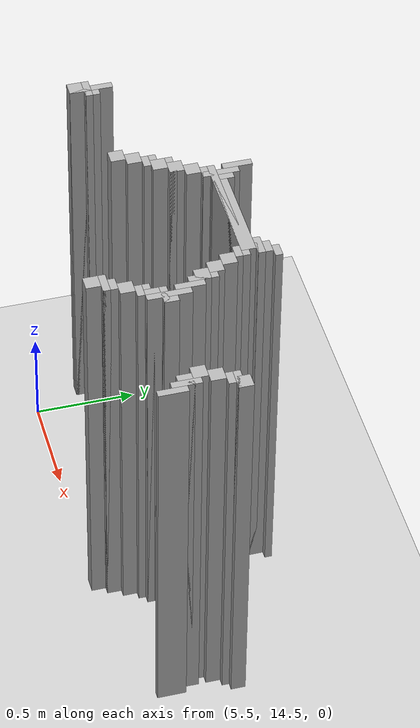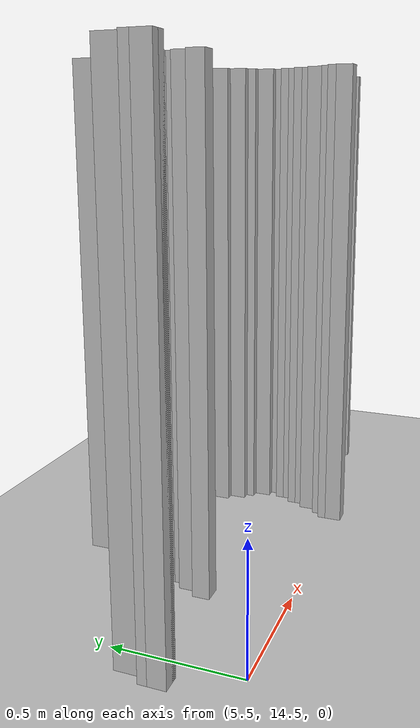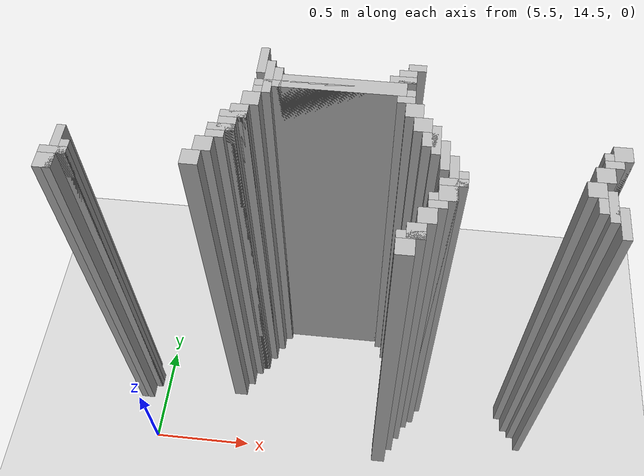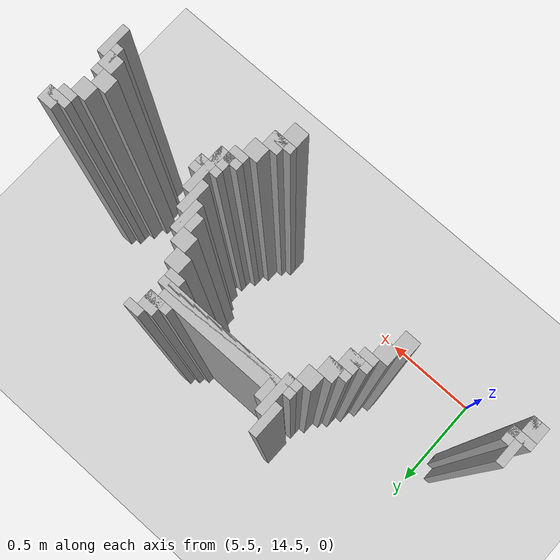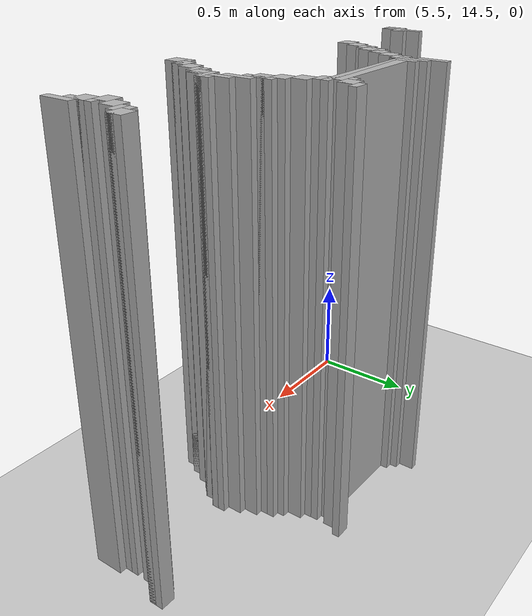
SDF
<sdf version="1.6">
 <world name="slam_world">
  <model name="ground_plane">
   <static>true</static>
   <link name="link">
    <collision name="collision">
     <geometry><plane><normal>0 0 1</normal><size>100 100</size></plane></geometry>
    </collision>
    <visual name="visual">
     <geometry><plane><normal>0 0 1</normal><size>100 100</size></plane></geometry>
     <material>
      <ambient>0.8 0.8 0.8 1</ambient>
      <diffuse>0.8 0.8 0.8 1</diffuse>
      <specular>0.8 0.8 0.8 1</specular>
     </material>
    </visual>
   </link>
  </model>
  <model name="wall_676">
   <static>true</static>
   <pose>6.107888631090487 15.348027842227378 1.0 0 0 0</pose>
   <link name="link">
    <collision name="collision">
     <geometry><box><size>0.03480278422273782 0.13921113689095127 2.0</size></box></geometry>
    </collision>
    <visual name="visual">
     <geometry><box><size>0.03480278422273782 0.13921113689095127 2.0</size></box></geometry>
     <material><ambient>0.5 0.5 0.5 1</ambient><diffuse>0.7 0.7 0.7 1</diffuse></material>
    </visual>
   </link>
  </model>
  <model name="wall_688">
   <static>true</static>
   <pose>6.716937354988398 15.365429234338746 1.0 0 0 0</pose>
   <link name="link">
    <collision name="collision">
     <geometry><box><size>0.06960556844547564 0.03480278422273782 2.0</size></box></geometry>
    </collision>
    <visual name="visual">
     <geometry><box><size>0.06960556844547564 0.03480278422273782 2.0</size></box></geometry>
     <material><ambient>0.5 0.5 0.5 1</ambient><diffuse>0.7 0.7 0.7 1</diffuse></material>
    </visual>
   </link>
  </model>
  <model name="wall_698">
   <static>true</static>
   <pose>6.142691415313225 15.261020881670532 1.0 0 0 0</pose>
   <link name="link">
    <collision name="collision">
     <geometry><box><size>0.03480278422273782 0.17401392111368907 2.0</size></box></geometry>
    </collision>
    <visual name="visual">
     <geometry><box><size>0.03480278422273782 0.17401392111368907 2.0</size></box></geometry>
     <material><ambient>0.5 0.5 0.5 1</ambient><diffuse>0.7 0.7 0.7 1</diffuse></material>
    </visual>
   </link>
  </model>
  <model name="wall_699">
   <static>true</static>
   <pose>6.682134570765661 15.31322505800464 1.0 0 0 0</pose>
   <link name="link">
    <collision name="collision">
     <geometry><box><size>0.06960556844547564 0.06960556844547564 2.0</size></box></geometry>
    </collision>
    <visual name="visual">
     <geometry><box><size>0.06960556844547564 0.06960556844547564 2.0</size></box></geometry>
     <material><ambient>0.5 0.5 0.5 1</ambient><diffuse>0.7 0.7 0.7 1</diffuse></material>
    </visual>
   </link>
  </model>
  <model name="wall_714">
   <static>true</static>
   <pose>6.177494199535962 15.261020881670532 1.0 0 0 0</pose>
   <link name="link">
    <collision name="collision">
     <geometry><box><size>0.03480278422273782 0.10440835266821345 2.0</size></box></geometry>
    </collision>
    <visual name="visual">
     <geometry><box><size>0.03480278422273782 0.10440835266821345 2.0</size></box></geometry>
     <material><ambient>0.5 0.5 0.5 1</ambient><diffuse>0.7 0.7 0.7 1</diffuse></material>
    </visual>
   </link>
  </model>
  <model name="wall_715">
   <static>true</static>
   <pose>6.664733178654292 15.295823665893272 1.0 0 0 0</pose>
   <link name="link">
    <collision name="collision">
     <geometry><box><size>0.10440835266821345 0.03480278422273782 2.0</size></box></geometry>
    </collision>
    <visual name="visual">
     <geometry><box><size>0.10440835266821345 0.03480278422273782 2.0</size></box></geometry>
     <material><ambient>0.5 0.5 0.5 1</ambient><diffuse>0.7 0.7 0.7 1</diffuse></material>
    </visual>
   </link>
  </model>
  <model name="wall_727">
   <static>true</static>
   <pose>6.438515081206496 15.243619489559164 1.0 0 0 0</pose>
   <link name="link">
    <collision name="collision">
     <geometry><box><size>0.4872389791183295 0.06960556844547564 2.0</size></box></geometry>
    </collision>
    <visual name="visual">
     <geometry><box><size>0.4872389791183295 0.06960556844547564 2.0</size></box></geometry>
     <material><ambient>0.5 0.5 0.5 1</ambient><diffuse>0.7 0.7 0.7 1</diffuse></material>
    </visual>
   </link>
  </model>
  <model name="wall_737">
   <static>true</static>
   <pose>6.403712296983758 15.226218097447795 1.0 0 0 0</pose>
   <link name="link">
    <collision name="collision">
     <geometry><box><size>0.6264501160092807 0.03480278422273782 2.0</size></box></geometry>
    </collision>
    <visual name="visual">
     <geometry><box><size>0.6264501160092807 0.03480278422273782 2.0</size></box></geometry>
     <material><ambient>0.5 0.5 0.5 1</ambient><diffuse>0.7 0.7 0.7 1</diffuse></material>
    </visual>
   </link>
  </model>
  <model name="wall_749">
   <static>true</static>
   <pose>6.125290023201856 15.191415313225058 1.0 0 0 0</pose>
   <link name="link">
    <collision name="collision">
     <geometry><box><size>0.06960556844547564 0.03480278422273782 2.0</size></box></geometry>
    </collision>
    <visual name="visual">
     <geometry><box><size>0.06960556844547564 0.03480278422273782 2.0</size></box></geometry>
     <material><ambient>0.5 0.5 0.5 1</ambient><diffuse>0.7 0.7 0.7 1</diffuse></material>
    </visual>
   </link>
  </model>
  <model name="wall_750">
   <static>true</static>
   <pose>6.682134570765661 15.191415313225058 1.0 0 0 0</pose>
   <link name="link">
    <collision name="collision">
     <geometry><box><size>0.06960556844547564 0.03480278422273782 2.0</size></box></geometry>
    </collision>
    <visual name="visual">
     <geometry><box><size>0.06960556844547564 0.03480278422273782 2.0</size></box></geometry>
     <material><ambient>0.5 0.5 0.5 1</ambient><diffuse>0.7 0.7 0.7 1</diffuse></material>
    </visual>
   </link>
  </model>
  <model name="wall_763">
   <static>true</static>
   <pose>6.090487238979118 15.139211136890951 1.0 0 0 0</pose>
   <link name="link">
    <collision name="collision">
     <geometry><box><size>0.06960556844547564 0.06960556844547564 2.0</size></box></geometry>
    </collision>
    <visual name="visual">
     <geometry><box><size>0.06960556844547564 0.06960556844547564 2.0</size></box></geometry>
     <material><ambient>0.5 0.5 0.5 1</ambient><diffuse>0.7 0.7 0.7 1</diffuse></material>
    </visual>
   </link>
  </model>
  <model name="wall_764">
   <static>true</static>
   <pose>6.716937354988398 15.139211136890951 1.0 0 0 0</pose>
   <link name="link">
    <collision name="collision">
     <geometry><box><size>0.06960556844547564 0.06960556844547564 2.0</size></box></geometry>
    </collision>
    <visual name="visual">
     <geometry><box><size>0.06960556844547564 0.06960556844547564 2.0</size></box></geometry>
     <material><ambient>0.5 0.5 0.5 1</ambient><diffuse>0.7 0.7 0.7 1</diffuse></material>
    </visual>
   </link>
  </model>
  <model name="wall_777">
   <static>true</static>
   <pose>6.05568445475638 15.069605568445475 1.0 0 0 0</pose>
   <link name="link">
    <collision name="collision">
     <geometry><box><size>0.06960556844547564 0.06960556844547564 2.0</size></box></geometry>
    </collision>
    <visual name="visual">
     <geometry><box><size>0.06960556844547564 0.06960556844547564 2.0</size></box></geometry>
     <material><ambient>0.5 0.5 0.5 1</ambient><diffuse>0.7 0.7 0.7 1</diffuse></material>
    </visual>
   </link>
  </model>
  <model name="wall_778">
   <static>true</static>
   <pose>6.751740139211137 15.069605568445475 1.0 0 0 0</pose>
   <link name="link">
    <collision name="collision">
     <geometry><box><size>0.06960556844547564 0.06960556844547564 2.0</size></box></geometry>
    </collision>
    <visual name="visual">
     <geometry><box><size>0.06960556844547564 0.06960556844547564 2.0</size></box></geometry>
     <material><ambient>0.5 0.5 0.5 1</ambient><diffuse>0.7 0.7 0.7 1</diffuse></material>
    </visual>
   </link>
  </model>
  <model name="wall_791">
   <static>true</static>
   <pose>6.038283062645012 15.052204176334106 1.0 0 0 0</pose>
   <link name="link">
    <collision name="collision">
     <geometry><box><size>0.10440835266821345 0.03480278422273782 2.0</size></box></geometry>
    </collision>
    <visual name="visual">
     <geometry><box><size>0.10440835266821345 0.03480278422273782 2.0</size></box></geometry>
     <material><ambient>0.5 0.5 0.5 1</ambient><diffuse>0.7 0.7 0.7 1</diffuse></material>
    </visual>
   </link>
  </model>
  <model name="wall_792">
   <static>true</static>
   <pose>6.803944315545244 15.0 1.0 0 0 0</pose>
   <link name="link">
    <collision name="collision">
     <geometry><box><size>0.03480278422273782 0.13921113689095127 2.0</size></box></geometry>
    </collision>
    <visual name="visual">
     <geometry><box><size>0.03480278422273782 0.13921113689095127 2.0</size></box></geometry>
     <material><ambient>0.5 0.5 0.5 1</ambient><diffuse>0.7 0.7 0.7 1</diffuse></material>
    </visual>
   </link>
  </model>
  <model name="wall_804">
   <static>true</static>
   <pose>6.020881670533642 15.0 1.0 0 0 0</pose>
   <link name="link">
    <collision name="collision">
     <geometry><box><size>0.06960556844547564 0.06960556844547564 2.0</size></box></geometry>
    </collision>
    <visual name="visual">
     <geometry><box><size>0.06960556844547564 0.06960556844547564 2.0</size></box></geometry>
     <material><ambient>0.5 0.5 0.5 1</ambient><diffuse>0.7 0.7 0.7 1</diffuse></material>
    </visual>
   </link>
  </model>
  <model name="wall_805">
   <static>true</static>
   <pose>6.786542923433874 15.0 1.0 0 0 0</pose>
   <link name="link">
    <collision name="collision">
     <geometry><box><size>0.06960556844547564 0.06960556844547564 2.0</size></box></geometry>
    </collision>
    <visual name="visual">
     <geometry><box><size>0.06960556844547564 0.06960556844547564 2.0</size></box></geometry>
     <material><ambient>0.5 0.5 0.5 1</ambient><diffuse>0.7 0.7 0.7 1</diffuse></material>
    </visual>
   </link>
  </model>
  <model name="wall_806">
   <static>true</static>
   <pose>7.48259860788863 15.0 1.0 0 0 0</pose>
   <link name="link">
    <collision name="collision">
     <geometry><box><size>0.06960556844547564 0.06960556844547564 2.0</size></box></geometry>
    </collision>
    <visual name="visual">
     <geometry><box><size>0.06960556844547564 0.06960556844547564 2.0</size></box></geometry>
     <material><ambient>0.5 0.5 0.5 1</ambient><diffuse>0.7 0.7 0.7 1</diffuse></material>
    </visual>
   </link>
  </model>
  <model name="wall_817">
   <static>true</static>
   <pose>6.003480278422273 14.982598607888631 1.0 0 0 0</pose>
   <link name="link">
    <collision name="collision">
     <geometry><box><size>0.10440835266821345 0.03480278422273782 2.0</size></box></geometry>
    </collision>
    <visual name="visual">
     <geometry><box><size>0.10440835266821345 0.03480278422273782 2.0</size></box></geometry>
     <material><ambient>0.5 0.5 0.5 1</ambient><diffuse>0.7 0.7 0.7 1</diffuse></material>
    </visual>
   </link>
  </model>
  <model name="wall_818">
   <static>true</static>
   <pose>6.838747099767981 14.930394431554523 1.0 0 0 0</pose>
   <link name="link">
    <collision name="collision">
     <geometry><box><size>0.03480278422273782 0.13921113689095127 2.0</size></box></geometry>
    </collision>
    <visual name="visual">
     <geometry><box><size>0.03480278422273782 0.13921113689095127 2.0</size></box></geometry>
     <material><ambient>0.5 0.5 0.5 1</ambient><diffuse>0.7 0.7 0.7 1</diffuse></material>
    </visual>
   </link>
  </model>
  <model name="wall_819">
   <static>true</static>
   <pose>7.465197215777262 14.982598607888631 1.0 0 0 0</pose>
   <link name="link">
    <collision name="collision">
     <geometry><box><size>0.10440835266821345 0.03480278422273782 2.0</size></box></geometry>
    </collision>
    <visual name="visual">
     <geometry><box><size>0.10440835266821345 0.03480278422273782 2.0</size></box></geometry>
     <material><ambient>0.5 0.5 0.5 1</ambient><diffuse>0.7 0.7 0.7 1</diffuse></material>
    </visual>
   </link>
  </model>
  <model name="wall_829">
   <static>true</static>
   <pose>5.986078886310905 14.947795823665892 1.0 0 0 0</pose>
   <link name="link">
    <collision name="collision">
     <geometry><box><size>0.06960556844547564 0.03480278422273782 2.0</size></box></geometry>
    </collision>
    <visual name="visual">
     <geometry><box><size>0.06960556844547564 0.03480278422273782 2.0</size></box></geometry>
     <material><ambient>0.5 0.5 0.5 1</ambient><diffuse>0.7 0.7 0.7 1</diffuse></material>
    </visual>
   </link>
  </model>
  <model name="wall_830">
   <static>true</static>
   <pose>7.447795823665893 14.947795823665892 1.0 0 0 0</pose>
   <link name="link">
    <collision name="collision">
     <geometry><box><size>0.06960556844547564 0.03480278422273782 2.0</size></box></geometry>
    </collision>
    <visual name="visual">
     <geometry><box><size>0.06960556844547564 0.03480278422273782 2.0</size></box></geometry>
     <material><ambient>0.5 0.5 0.5 1</ambient><diffuse>0.7 0.7 0.7 1</diffuse></material>
    </visual>
   </link>
  </model>
  <model name="wall_838">
   <static>true</static>
   <pose>5.41183294663573 14.825986078886311 1.0 0 0 0</pose>
   <link name="link">
    <collision name="collision">
     <geometry><box><size>0.03480278422273782 0.2088167053364269 2.0</size></box></geometry>
    </collision>
    <visual name="visual">
     <geometry><box><size>0.03480278422273782 0.2088167053364269 2.0</size></box></geometry>
     <material><ambient>0.5 0.5 0.5 1</ambient><diffuse>0.7 0.7 0.7 1</diffuse></material>
    </visual>
   </link>
  </model>
  <model name="wall_839">
   <static>true</static>
   <pose>5.951276102088166 14.895591647331786 1.0 0 0 0</pose>
   <link name="link">
    <collision name="collision">
     <geometry><box><size>0.06960556844547564 0.06960556844547564 2.0</size></box></geometry>
    </collision>
    <visual name="visual">
     <geometry><box><size>0.06960556844547564 0.06960556844547564 2.0</size></box></geometry>
     <material><ambient>0.5 0.5 0.5 1</ambient><diffuse>0.7 0.7 0.7 1</diffuse></material>
    </visual>
   </link>
  </model>
  <model name="wall_840">
   <static>true</static>
   <pose>6.8735498839907185 14.825986078886311 1.0 0 0 0</pose>
   <link name="link">
    <collision name="collision">
     <geometry><box><size>0.03480278422273782 0.2088167053364269 2.0</size></box></geometry>
    </collision>
    <visual name="visual">
     <geometry><box><size>0.03480278422273782 0.2088167053364269 2.0</size></box></geometry>
     <material><ambient>0.5 0.5 0.5 1</ambient><diffuse>0.7 0.7 0.7 1</diffuse></material>
    </visual>
   </link>
  </model>
  <model name="wall_841">
   <static>true</static>
   <pose>7.412993039443156 14.895591647331786 1.0 0 0 0</pose>
   <link name="link">
    <collision name="collision">
     <geometry><box><size>0.06960556844547564 0.06960556844547564 2.0</size></box></geometry>
    </collision>
    <visual name="visual">
     <geometry><box><size>0.06960556844547564 0.06960556844547564 2.0</size></box></geometry>
     <material><ambient>0.5 0.5 0.5 1</ambient><diffuse>0.7 0.7 0.7 1</diffuse></material>
    </visual>
   </link>
  </model>
  <model name="wall_860">
   <static>true</static>
   <pose>5.4466357308584685 14.825986078886311 1.0 0 0 0</pose>
   <link name="link">
    <collision name="collision">
     <geometry><box><size>0.03480278422273782 0.06960556844547564 2.0</size></box></geometry>
    </collision>
    <visual name="visual">
     <geometry><box><size>0.03480278422273782 0.06960556844547564 2.0</size></box></geometry>
     <material><ambient>0.5 0.5 0.5 1</ambient><diffuse>0.7 0.7 0.7 1</diffuse></material>
    </visual>
   </link>
  </model>
  <model name="wall_861">
   <static>true</static>
   <pose>5.916473317865429 14.825986078886311 1.0 0 0 0</pose>
   <link name="link">
    <collision name="collision">
     <geometry><box><size>0.06960556844547564 0.06960556844547564 2.0</size></box></geometry>
    </collision>
    <visual name="visual">
     <geometry><box><size>0.06960556844547564 0.06960556844547564 2.0</size></box></geometry>
     <material><ambient>0.5 0.5 0.5 1</ambient><diffuse>0.7 0.7 0.7 1</diffuse></material>
    </visual>
   </link>
  </model>
  <model name="wall_862">
   <static>true</static>
   <pose>6.908352668213457 14.825986078886311 1.0 0 0 0</pose>
   <link name="link">
    <collision name="collision">
     <geometry><box><size>0.03480278422273782 0.06960556844547564 2.0</size></box></geometry>
    </collision>
    <visual name="visual">
     <geometry><box><size>0.03480278422273782 0.06960556844547564 2.0</size></box></geometry>
     <material><ambient>0.5 0.5 0.5 1</ambient><diffuse>0.7 0.7 0.7 1</diffuse></material>
    </visual>
   </link>
  </model>
  <model name="wall_863">
   <static>true</static>
   <pose>7.378190255220417 14.825986078886311 1.0 0 0 0</pose>
   <link name="link">
    <collision name="collision">
     <geometry><box><size>0.06960556844547564 0.06960556844547564 2.0</size></box></geometry>
    </collision>
    <visual name="visual">
     <geometry><box><size>0.06960556844547564 0.06960556844547564 2.0</size></box></geometry>
     <material><ambient>0.5 0.5 0.5 1</ambient><diffuse>0.7 0.7 0.7 1</diffuse></material>
    </visual>
   </link>
  </model>
  <model name="wall_874">
   <static>true</static>
   <pose>5.41183294663573 14.80858468677494 1.0 0 0 0</pose>
   <link name="link">
    <collision name="collision">
     <geometry><box><size>0.10440835266821345 0.03480278422273782 2.0</size></box></geometry>
    </collision>
    <visual name="visual">
     <geometry><box><size>0.10440835266821345 0.03480278422273782 2.0</size></box></geometry>
     <material><ambient>0.5 0.5 0.5 1</ambient><diffuse>0.7 0.7 0.7 1</diffuse></material>
    </visual>
   </link>
  </model>
  <model name="wall_875">
   <static>true</static>
   <pose>6.8735498839907185 14.80858468677494 1.0 0 0 0</pose>
   <link name="link">
    <collision name="collision">
     <geometry><box><size>0.10440835266821345 0.03480278422273782 2.0</size></box></geometry>
    </collision>
    <visual name="visual">
     <geometry><box><size>0.10440835266821345 0.03480278422273782 2.0</size></box></geometry>
     <material><ambient>0.5 0.5 0.5 1</ambient><diffuse>0.7 0.7 0.7 1</diffuse></material>
    </visual>
   </link>
  </model>
  <model name="wall_876">
   <static>true</static>
   <pose>7.430394431554524 14.756380510440835 1.0 0 0 0</pose>
   <link name="link">
    <collision name="collision">
     <geometry><box><size>0.03480278422273782 0.13921113689095127 2.0</size></box></geometry>
    </collision>
    <visual name="visual">
     <geometry><box><size>0.03480278422273782 0.13921113689095127 2.0</size></box></geometry>
     <material><ambient>0.5 0.5 0.5 1</ambient><diffuse>0.7 0.7 0.7 1</diffuse></material>
    </visual>
   </link>
  </model>
  <model name="wall_887">
   <static>true</static>
   <pose>5.3944315545243615 14.756380510440835 1.0 0 0 0</pose>
   <link name="link">
    <collision name="collision">
     <geometry><box><size>0.06960556844547564 0.06960556844547564 2.0</size></box></geometry>
    </collision>
    <visual name="visual">
     <geometry><box><size>0.06960556844547564 0.06960556844547564 2.0</size></box></geometry>
     <material><ambient>0.5 0.5 0.5 1</ambient><diffuse>0.7 0.7 0.7 1</diffuse></material>
    </visual>
   </link>
  </model>
  <model name="wall_888">
   <static>true</static>
   <pose>6.85614849187935 14.756380510440835 1.0 0 0 0</pose>
   <link name="link">
    <collision name="collision">
     <geometry><box><size>0.06960556844547564 0.06960556844547564 2.0</size></box></geometry>
    </collision>
    <visual name="visual">
     <geometry><box><size>0.06960556844547564 0.06960556844547564 2.0</size></box></geometry>
     <material><ambient>0.5 0.5 0.5 1</ambient><diffuse>0.7 0.7 0.7 1</diffuse></material>
    </visual>
   </link>
  </model>
  <model name="wall_889">
   <static>true</static>
   <pose>7.412993039443156 14.756380510440835 1.0 0 0 0</pose>
   <link name="link">
    <collision name="collision">
     <geometry><box><size>0.06960556844547564 0.06960556844547564 2.0</size></box></geometry>
    </collision>
    <visual name="visual">
     <geometry><box><size>0.06960556844547564 0.06960556844547564 2.0</size></box></geometry>
     <material><ambient>0.5 0.5 0.5 1</ambient><diffuse>0.7 0.7 0.7 1</diffuse></material>
    </visual>
   </link>
  </model>
  <model name="wall_904">
   <static>true</static>
   <pose>6.838747099767981 14.738979118329466 1.0 0 0 0</pose>
   <link name="link">
    <collision name="collision">
     <geometry><box><size>0.10440835266821345 0.03480278422273782 2.0</size></box></geometry>
    </collision>
    <visual name="visual">
     <geometry><box><size>0.10440835266821345 0.03480278422273782 2.0</size></box></geometry>
     <material><ambient>0.5 0.5 0.5 1</ambient><diffuse>0.7 0.7 0.7 1</diffuse></material>
    </visual>
   </link>
  </model>
  <model name="wall_905">
   <static>true</static>
   <pose>7.465197215777262 14.68677494199536 1.0 0 0 0</pose>
   <link name="link">
    <collision name="collision">
     <geometry><box><size>0.03480278422273782 0.13921113689095127 2.0</size></box></geometry>
    </collision>
    <visual name="visual">
     <geometry><box><size>0.03480278422273782 0.13921113689095127 2.0</size></box></geometry>
     <material><ambient>0.5 0.5 0.5 1</ambient><diffuse>0.7 0.7 0.7 1</diffuse></material>
    </visual>
   </link>
  </model>
  <model name="wall_918">
   <static>true</static>
   <pose>6.821345707656612 14.704176334106728 1.0 0 0 0</pose>
   <link name="link">
    <collision name="collision">
     <geometry><box><size>0.06960556844547564 0.03480278422273782 2.0</size></box></geometry>
    </collision>
    <visual name="visual">
     <geometry><box><size>0.06960556844547564 0.03480278422273782 2.0</size></box></geometry>
     <material><ambient>0.5 0.5 0.5 1</ambient><diffuse>0.7 0.7 0.7 1</diffuse></material>
    </visual>
   </link>
  </model>
  <model name="wall_931">
   <static>true</static>
   <pose>6.786542923433874 14.65197215777262 1.0 0 0 0</pose>
   <link name="link">
    <collision name="collision">
     <geometry><box><size>0.06960556844547564 0.06960556844547564 2.0</size></box></geometry>
    </collision>
    <visual name="visual">
     <geometry><box><size>0.06960556844547564 0.06960556844547564 2.0</size></box></geometry>
     <material><ambient>0.5 0.5 0.5 1</ambient><diffuse>0.7 0.7 0.7 1</diffuse></material>
    </visual>
   </link>
  </model>
  <model name="wall_947">
   <static>true</static>
   <pose>6.751740139211137 14.582366589327146 1.0 0 0 0</pose>
   <link name="link">
    <collision name="collision">
     <geometry><box><size>0.06960556844547564 0.06960556844547564 2.0</size></box></geometry>
    </collision>
    <visual name="visual">
     <geometry><box><size>0.06960556844547564 0.06960556844547564 2.0</size></box></geometry>
     <material><ambient>0.5 0.5 0.5 1</ambient><diffuse>0.7 0.7 0.7 1</diffuse></material>
    </visual>
   </link>
  </model>
  <model name="wall_963">
   <static>true</static>
   <pose>6.734338747099768 14.564965197215777 1.0 0 0 0</pose>
   <link name="link">
    <collision name="collision">
     <geometry><box><size>0.10440835266821345 0.03480278422273782 2.0</size></box></geometry>
    </collision>
    <visual name="visual">
     <geometry><box><size>0.10440835266821345 0.03480278422273782 2.0</size></box></geometry>
     <material><ambient>0.5 0.5 0.5 1</ambient><diffuse>0.7 0.7 0.7 1</diffuse></material>
    </visual>
   </link>
  </model>
  <model name="wall_976">
   <static>true</static>
   <pose>6.716937354988398 14.512761020881669 1.0 0 0 0</pose>
   <link name="link">
    <collision name="collision">
     <geometry><box><size>0.06960556844547564 0.06960556844547564 2.0</size></box></geometry>
    </collision>
    <visual name="visual">
     <geometry><box><size>0.06960556844547564 0.06960556844547564 2.0</size></box></geometry>
     <material><ambient>0.5 0.5 0.5 1</ambient><diffuse>0.7 0.7 0.7 1</diffuse></material>
    </visual>
   </link>
  </model>
 </world>
</sdf>
